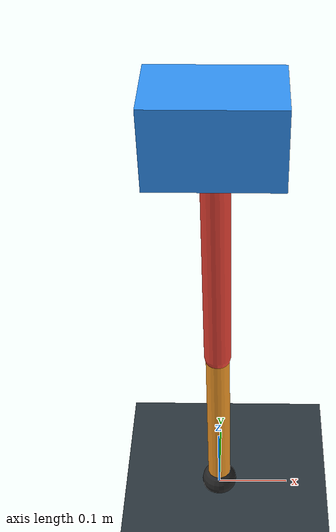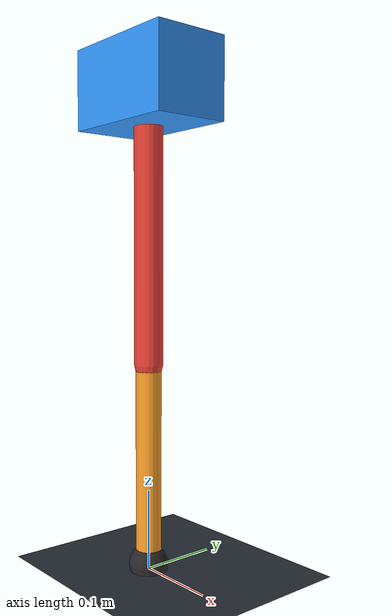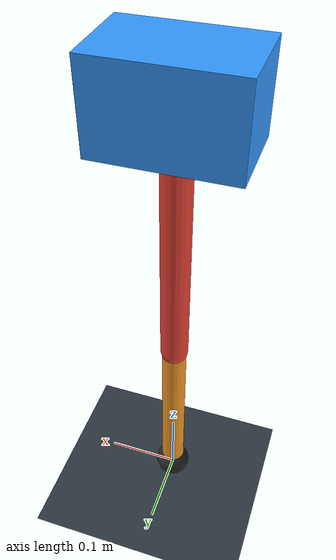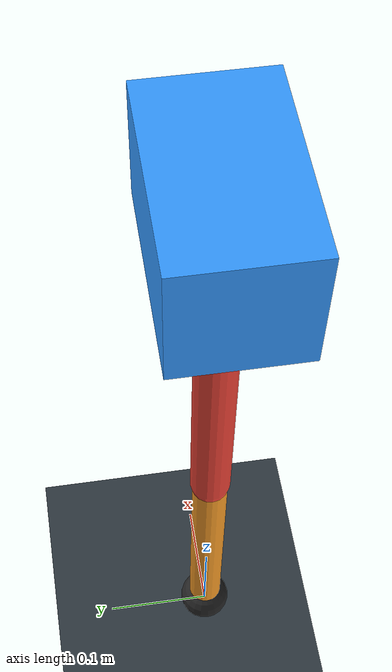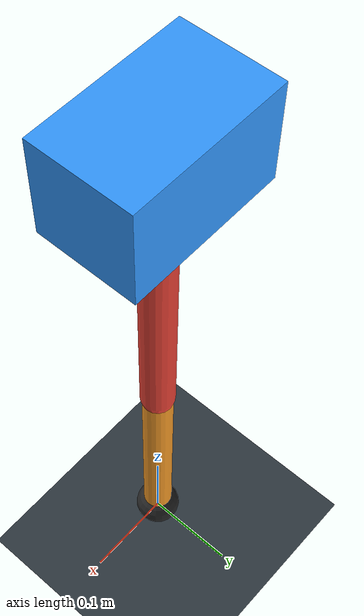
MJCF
<mujoco model="single_axis_two_bar">
  <compiler angle="radian" inertiafromgeom="true"/>
  <option timestep="0.001" integrator="implicitfast" gravity="0 0 -9.81"/>
  <default>
    <joint damping="0.08"/>
    <geom friction="1.2 0.01 0.0001" condim="3"/>
  </default>
  <worldbody>
    <geom name="floor" type="plane" size="5 5 0.1" rgba="0.18 0.22 0.25 1"/>
    <body name="carriage" pos="0 0 0.602002149717471">
      <joint name="pole_slide" type="slide" axis="0 0 1"/>
      <geom name="payload" type="box" size="0.08 0.05 0.05" mass="3.3738534103511197" rgba="0.2 0.6 1 1"/>
      <body name="thigh" pos="0 0 0">
        <joint name="hip" type="hinge" axis="0 1 0"/>
        <geom name="thigh_link" type="capsule" fromto="0 0 0 0 0 -0.34253164228344507" size="0.018" mass="0.24405832128327204" rgba="0.9 0.25 0.2 1"/>
        <body name="shank" pos="0 0 -0.34253164228344507">
          <joint name="knee" type="hinge" axis="0 1 0"/>
          <geom name="shank_link" type="capsule" fromto="0 0 0 0 0 -0.25231593474487546" size="0.016" mass="0.17977843756664266" rgba="0.95 0.6 0.15 1"/>
          <geom name="foot" type="sphere" pos="0 0 -0.25231593474487546" size="0.025" mass="0.03" rgba="0.15 0.15 0.15 1"/>
          <site name="toe" pos="0 0 -0.25231593474487546" size="0.008"/>
        </body>
      </body>
    </body>
  </worldbody>
  <actuator>
    <motor name="hip_motor" joint="hip" ctrlrange="-38.124490187080475 38.124490187080475"/>
    <motor name="knee_motor" joint="knee" ctrlrange="-148.30785598129168 148.30785598129168"/>
  </actuator>
</mujoco>
